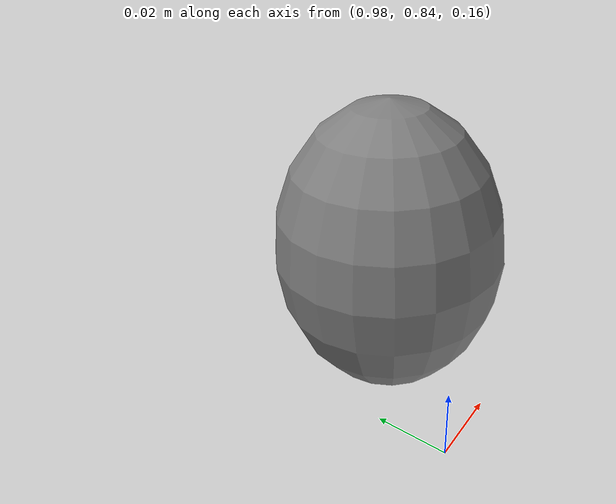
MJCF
<mujoco model="MuJoCo Model">
  <compiler angle="radian" meshdir="../stls/hand/" texturedir="../textures/"/>

  <option apirate="200" iterations="20"/>

  <worldbody>
    <light name="light0" pos="0 1 4" dir="0 0 -1" type="directional" castshadow="false" ambient="0.2 0.2 0.2" diffuse="0.8 0.8 0.8"/>
    <body name="egg" pos="1 0.87 0.2">
      <joint name="egg:joint" type="free" damping="0.01"/>
      <geom name="egg" size="0.03 0.03 0.04" type="ellipsoid" condim="4"/>
      <site name="egg:center" pos="0 0 0" size="0.01" rgba="1 0 0 0"/>
    </body>
  </worldbody>
</mujoco>
